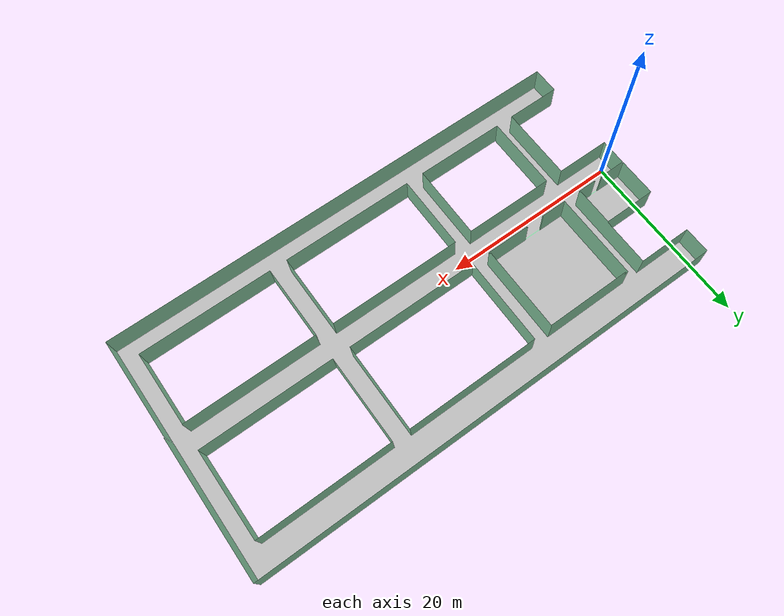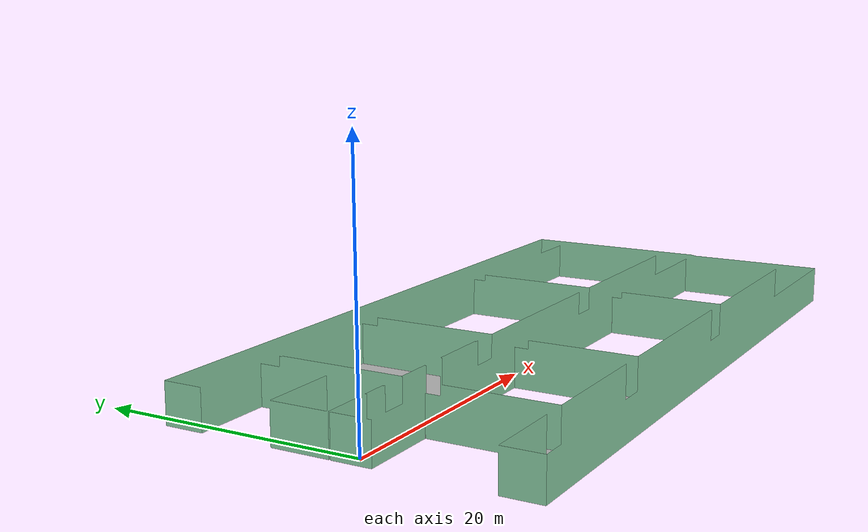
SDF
<sdf version="1.6">
 <world name="default">
  <light name="sun" type="directional">
   <pose>0 0 10 0 -0 0</pose>
   <diffuse>0.8 0.8 0.8 1</diffuse>
   <specular>0.2 0.2 0.2 1</specular>
   <attenuation>
    <range>1000</range>
    <constant>0.9</constant>
    <linear>0.01</linear>
    <quadratic>0.001</quadratic>
   </attenuation>
   <direction>-0.5 0.1 -0.9</direction>
  </light>
  <gravity>0 0 -9.8</gravity>
  <magnetic_field>6e-06 2.3e-05 -4.2e-05</magnetic_field>
  <atmosphere type="adiabatic"/>
  <physics name="default_physics" default="0" type="ode">
   <max_step_size>0.001</max_step_size>
   <real_time_factor>1</real_time_factor>
   <real_time_update_rate>1000</real_time_update_rate>
  </physics>
  <scene><ambient>0.4 0.4 0.4 1</ambient><background>0.7 0.7 0.7 1</background><shadows>1</shadows></scene>
  <audio><device>default</device></audio>
  <spherical_coordinates>
   <surface_model>EARTH_WGS84</surface_model>
   <latitude_deg>0</latitude_deg>
   <longitude_deg>0</longitude_deg>
   <elevation>0</elevation>
   <heading_deg>0</heading_deg>
  </spherical_coordinates>
  <model name="Corridors5">
   <link name="link_0">
    <inertial>
     <mass>1</mass>
     <inertia>
      <ixx>0.166667</ixx>
      <ixy>0</ixy>
      <ixz>0</ixz>
      <iyy>0.166667</iyy>
      <iyz>0</iyz>
      <izz>0.166667</izz>
     </inertia>
    </inertial>
    <visual name="visual">
     <geometry><mesh><uri>model://corridor5.dae</uri><scale>1 1 1</scale></mesh></geometry>
    </visual>
    <collision name="collision">
     <geometry><mesh><uri>model://corridor5.dae</uri><scale>1 1 1</scale></mesh></geometry>
     <surface>
      <friction>
       <ode><mu>1</mu><mu2>1</mu2><fdir1>0 0 0</fdir1><slip1>0</slip1><slip2>0</slip2></ode>
       <torsional>
        <coefficient>1</coefficient>
        <patch_radius>0</patch_radius>
        <surface_radius>0</surface_radius>
        <use_patch_radius>1</use_patch_radius>
        <ode><slip>0</slip></ode>
       </torsional>
      </friction>
      <bounce><restitution_coefficient>0</restitution_coefficient><threshold>1e+06</threshold></bounce>
      <contact>
       <collide_without_contact>0</collide_without_contact>
       <collide_without_contact_bitmask>1</collide_without_contact_bitmask>
       <collide_bitmask>1</collide_bitmask>
       <ode>
        <soft_cfm>0</soft_cfm>
        <soft_erp>0.2</soft_erp>
        <kp>1e+13</kp>
        <kd>1</kd>
        <max_vel>0.01</max_vel>
        <min_depth>0</min_depth>
       </ode>
       <bullet>
        <split_impulse>1</split_impulse>
        <split_impulse_penetration_threshold>-0.01</split_impulse_penetration_threshold>
        <soft_cfm>0</soft_cfm>
        <soft_erp>0.2</soft_erp>
        <kp>1e+13</kp>
        <kd>1</kd>
       </bullet>
      </contact>
     </surface>
    </collision>
   </link>
   <static>1</static>
  </model>
  <light name="user_point_light_0" type="point">
   <pose>5.77794 -0.017109 1 0 -0 0</pose>
   <diffuse>0.5 0.5 0.5 1</diffuse>
   <specular>0.1 0.1 0.1 1</specular>
   <attenuation>
    <range>20</range>
    <constant>0.5</constant>
    <linear>0.01</linear>
    <quadratic>0.001</quadratic>
   </attenuation>
   <cast_shadows>0</cast_shadows>
   <direction>0 0 -1</direction>
  </light>
  <light name="user_point_light_1" type="point">
   <pose>17.9782 -0.016005 1 0 -0 0</pose>
   <diffuse>0.5 0.5 0.5 1</diffuse>
   <specular>0.1 0.1 0.1 1</specular>
   <attenuation>
    <range>20</range>
    <constant>0.5</constant>
    <linear>0.01</linear>
    <quadratic>0.001</quadratic>
   </attenuation>
   <cast_shadows>0</cast_shadows>
   <direction>0 0 -1</direction>
  </light>
  <light name="user_point_light_2" type="point">
   <pose>35.1898 0.086464 1 0 -0 0</pose>
   <diffuse>0.5 0.5 0.5 1</diffuse>
   <specular>0.1 0.1 0.1 1</specular>
   <attenuation>
    <range>20</range>
    <constant>0.5</constant>
    <linear>0.01</linear>
    <quadratic>0.001</quadratic>
   </attenuation>
   <cast_shadows>0</cast_shadows>
   <direction>0 0 -1</direction>
  </light>
  <light name="user_point_light_3" type="point">
   <pose>51.2281 -0.286876 1 0 -0 0</pose>
   <diffuse>0.5 0.5 0.5 1</diffuse>
   <specular>0.1 0.1 0.1 1</specular>
   <attenuation>
    <range>20</range>
    <constant>0.5</constant>
    <linear>0.01</linear>
    <quadratic>0.001</quadratic>
   </attenuation>
   <cast_shadows>0</cast_shadows>
   <direction>0 0 -1</direction>
  </light>
 </world>
</sdf>
